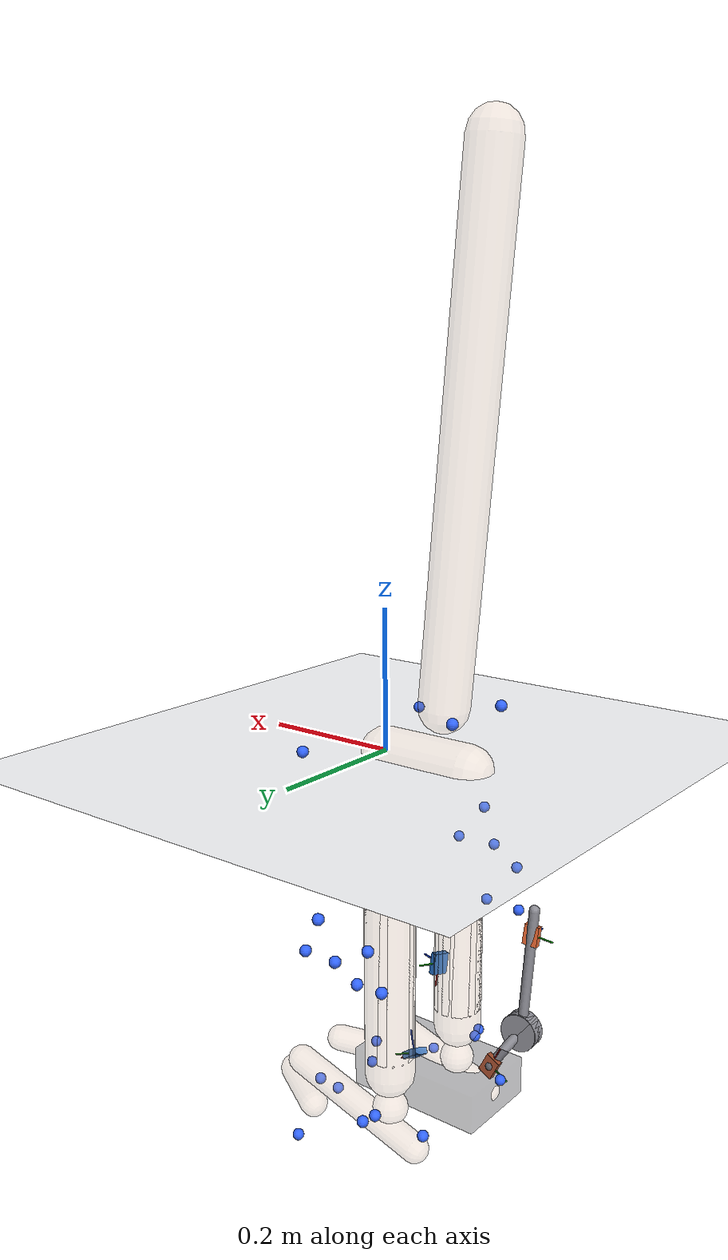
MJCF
<mujoco model="AB10">
  <compiler angle="radian" autolimits="true"/>
  <option timestep="0.005" gravity="0 0 -9.81"><flag contact="disable"/></option>
  <visual><global offwidth="1600" offheight="1200"/>
    <headlight ambient="0.55 0.55 0.55" diffuse="0.6 0.6 0.6"/></visual>
  <default><joint limited="false" damping="0"/><geom contype="0" conaffinity="0"/></default>
  <asset>
    <texture name="grid" type="2d" builtin="checker" rgb1="0.75 0.77 0.8" rgb2="0.85 0.87 0.9" width="512" height="512"/>
    <material name="grid" texture="grid" texrepeat="2 2" texuniform="true"/>
    <material name="skin" rgba="0.85 0.72 0.62 0.28"/>
  </asset>
  <worldbody>
    <light pos="0 0 4" dir="0 0 -1"/>
    <geom name="floor" type="plane" size="0 0 0.05" material="grid"/>
    <body name="pelvis" pos="0 0 0" quat="1 0 0 0">
      <joint name="pelvis_tx" type="slide" axis="1 0 0"/>
      <joint name="pelvis_ty" type="slide" axis="0 0 1"/>
      <joint name="pelvis_tz" type="slide" axis="0 -1 0"/>
      <joint name="pelvis_tilt" type="hinge" axis="0 -1 0"/>
      <joint name="pelvis_list" type="hinge" axis="1 0 0"/>
      <joint name="pelvis_rotation" type="hinge" axis="0 0 1"/>
      <inertial pos="-0.068270285 0 0" mass="13.4215" diaginertia="0.13421502 0.13421502 0.13421502"/>
      <geom type="capsule" fromto="0 0 0 -0.13654057 0 0" size="0.035" material="skin" mass="0"/>
      <site name="m_R_ASIS" pos="0.038416114 -0.12723426 0.026757285" size="0.008" rgba="0.2 0.4 1 1" group="2"/>
      <site name="m_L_ASIS" pos="0.039418578 0.12679107 0.023472" size="0.008" rgba="0.2 0.4 1 1" group="2"/>
      <site name="m_L_PSIS" pos="-0.15084693 0.056858622 0.078959827" size="0.008" rgba="0.2 0.4 1 1" group="2"/>
      <site name="m_R_PSIS" pos="-0.14918613 -0.057842359 0.076927052" size="0.008" rgba="0.2 0.4 1 1" group="2"/>
      <body name="femur_r" pos="-0.068270285 -0.080630393 -0.063828371" quat="1 0 0 0">
        <joint name="hip_flexion_r" type="hinge" axis="0 -1 0"/>
        <joint name="hip_adduction_r" type="hinge" axis="1 0 0"/>
        <joint name="hip_rotation_r" type="hinge" axis="0 0 1"/>
        <inertial pos="0 0 -0.16981628" mass="10.6002" diaginertia="0.10600217 0.10600217 0.10600217"/>
        <geom type="capsule" fromto="0 0 0 0 0 -0.33963257" size="0.035" material="skin" mass="0"/>
        <site name="m_R_Thigh_Upper" pos="0.030077259 -0.10829872 -0.066636975" size="0.008" rgba="0.2 0.4 1 1" group="2"/>
        <site name="m_R_Thigh_Front" pos="0.06919928 -0.099423219 -0.12010598" size="0.008" rgba="0.2 0.4 1 1" group="2"/>
        <site name="m_R_Thigh_Rear" pos="0.012768813 -0.11081967 -0.12308051" size="0.008" rgba="0.2 0.4 1 1" group="2"/>
        <site name="m_R_Knee_Lat" pos="0.00022959524 -0.057643993 -0.40618089" size="0.008" rgba="0.2 0.4 1 1" group="2"/>
        <body name="tibia_r" pos="0 0 0" quat="1 0 0 0">
<geom name="gt_shank_axis_x" type="capsule" size="0.0012" fromto="0.03350 0.00100 -0.28010 0.03473 0.00658 -0.31463" rgba="1 0.1 0.1 1" contype="0" conaffinity="0" mass="0"/>
<geom name="gt_shank_axis_y" type="capsule" size="0.0012" fromto="0.03350 0.00100 -0.28010 0.04381 0.03396 -0.27440" rgba="0.1 0.8 0.1 1" contype="0" conaffinity="0" mass="0"/>
<geom name="gt_shank_axis_z" type="capsule" size="0.0012" fromto="0.03350 0.00100 -0.28010 0.06692 -0.00937 -0.28059" rgba="0.1 0.3 1 1" contype="0" conaffinity="0" mass="0"/>
<geom name="exo_shank_axis_x" type="capsule" size="0.0012" fromto="-0.05448 -0.11616 -0.25495 -0.05679 -0.12057 -0.22030" rgba="1 0.1 0.1 1" contype="0" conaffinity="0" mass="0"/>
<geom name="exo_shank_axis_y" type="capsule" size="0.0012" fromto="-0.05448 -0.11616 -0.25495 -0.08934 -0.11803 -0.25751" rgba="0.1 0.8 0.1 1" contype="0" conaffinity="0" mass="0"/>
<geom name="exo_shank_axis_z" type="capsule" size="0.0012" fromto="-0.05448 -0.11616 -0.25495 -0.05231 -0.15083 -0.25922" rgba="0.1 0.3 1 1" contype="0" conaffinity="0" mass="0"/>
<geom name="encoder_shank" type="cylinder" size="0.03 0.012" fromto="-0.03752 -0.13175 -0.42323 -0.03948 -0.10785 -0.42237" rgba="0.55 0.55 0.58 1" contype="0" conaffinity="0" mass="0"/>
<geom name="strut_shank" type="capsule" size="0.008" fromto="-0.03850 -0.11980 -0.42280 -0.05848 -0.11525 -0.21299" rgba="0.55 0.55 0.58 1" contype="0" conaffinity="0" mass="0"/>
          <joint name="knee_r_translation1" type="slide" axis="1 0 0"/>
          <joint name="knee_r_translation2" type="slide" axis="0 0 1"/>
          <joint name="knee_angle_r" type="hinge" axis="0 -1 0"/>
          <inertial pos="0 0 -0.18359179" mass="4.2252" diaginertia="0.042252032 0.042252032 0.042252032"/>
          <geom type="capsule" fromto="0 0 0 0 0 -0.36718358" size="0.035" material="skin" mass="0"/>
          <site name="m_R_Shank_Upper" pos="-0.041103485 -0.090265539 -0.13977425" size="0.008" rgba="0.2 0.4 1 1" group="2"/>
          <site name="m_R_Shank_Front" pos="-0.00016861335 -0.073296684 -0.19551104" size="0.008" rgba="0.2 0.4 1 1" group="2"/>
          <site name="m_R_Shank_Rear" pos="-0.052502674 -0.079824174 -0.20083706" size="0.008" rgba="0.2 0.4 1 1" group="2"/>
          <site name="m_R_Ankle_Lat" pos="-0.00090786675 -0.046396653 -0.41126888" size="0.008" rgba="0.2 0.4 1 1" group="2"/>
          <site name="gt_shank_imu" type="box" size="0.016 0.012 0.005" pos="0.0335 0.001 -0.2801" quat="0.7005243 0.16388001 0.69288041 -0.048226316" rgba="0.16 0.47 0.84 1" group="1"/>
          <site name="exo_shank_imu" type="box" size="0.016 0.012 0.005" pos="-0.054481 -0.116164 -0.254948" quat="-0.43552432 -0.52665204 0.53257167 -0.49932315" rgba="0.92 0.41 0.20 1" group="1"/>
          <body name="talus_r" pos="0 0 -0.4228413" quat="1 0 0 0">
            <joint name="ankle_angle_r" type="hinge" axis="-0.10501355 -0.97912632 -0.17402245"/>
            <inertial pos="0 0 0" mass="0.113964" diaginertia="0.0011396367 0.0011396367 0.0011396367"/>
            <geom type="sphere" size="0.025" material="skin" mass="0"/>
            <body name="calcn_r" pos="-0.04795807 -0.0077881466 -0.04125161" quat="1 0 0 0">
<geom name="gt_foot_axis_x" type="capsule" size="0.0012" fromto="0.13330 -0.00100 0.00990 0.16122 -0.00464 -0.01090" rgba="1 0.1 0.1 1" contype="0" conaffinity="0" mass="0"/>
<geom name="gt_foot_axis_y" type="capsule" size="0.0012" fromto="0.13330 -0.00100 0.00990 0.14437 0.03088 0.01919" rgba="0.1 0.8 0.1 1" contype="0" conaffinity="0" mass="0"/>
<geom name="gt_foot_axis_z" type="capsule" size="0.0012" fromto="0.13330 -0.00100 0.00990 0.15128 -0.01498 0.03648" rgba="0.1 0.3 1 1" contype="0" conaffinity="0" mass="0"/>
<geom name="exo_foot_axis_x" type="capsule" size="0.0012" fromto="0.03748 -0.06825 -0.00932 0.02250 -0.07217 0.02207" rgba="1 0.1 0.1 1" contype="0" conaffinity="0" mass="0"/>
<geom name="exo_foot_axis_y" type="capsule" size="0.0012" fromto="0.03748 -0.06825 -0.00932 0.00585 -0.06640 -0.02419" rgba="0.1 0.8 0.1 1" contype="0" conaffinity="0" mass="0"/>
<geom name="exo_foot_axis_z" type="capsule" size="0.0012" fromto="0.03748 -0.06825 -0.00932 0.03749 -0.10298 -0.01365" rgba="0.1 0.3 1 1" contype="0" conaffinity="0" mass="0"/>
<geom name="encoder_foot" type="cylinder" size="0.03 0.012" fromto="0.01007 -0.12406 0.04054 0.00893 -0.10014 0.04206" rgba="0.55 0.55 0.58 1" contype="0" conaffinity="0" mass="0"/>
<geom name="strut_foot" type="capsule" size="0.008" fromto="0.00950 -0.11210 0.04130 0.03748 -0.06825 -0.00932" rgba="0.55 0.55 0.58 1" contype="0" conaffinity="0" mass="0"/>
<geom name="shoe" type="box" pos="0.09194 -0.00498 -0.00575" size="0.10837 0.06626 0.03000" rgba="0.15 0.15 0.18 0.35" contype="0" conaffinity="0" mass="0"/>
              <joint name="subtalar_angle_r" type="hinge" axis="0.78717961 0.12094949 0.60474746"/>
              <inertial pos="0.10238969 0 0.030716907" mass="1.42455" diaginertia="0.014245459 0.014245459 0.014245459"/>
              <geom type="capsule" fromto="0 0 0 0.20477938 0 0.061433813" size="0.02" material="skin" mass="0"/>
              <site name="m_R_Heel" pos="-0.023432593 -0.0017730639 0.023436829" size="0.008" rgba="0.2 0.4 1 1" group="2"/>
              <site name="m_R_Toe_Lat" pos="0.14294387 -0.064441714 -0.015746494" size="0.008" rgba="0.2 0.4 1 1" group="2"/>
              <site name="m_R_Toe_Med" pos="0.17841899 0.048083967 0.0022326382" size="0.008" rgba="0.2 0.4 1 1" group="2"/>
              <site name="m_R_Toe_Tip" pos="0.19031655 0.02241146 0.020702757" size="0.008" rgba="0.2 0.4 1 1" group="2"/>
              <site name="gt_foot_imu" type="box" size="0.016 0.012 0.005" pos="0.1333 -0.001 0.0099" quat="0.93108691 0.17850461 0.29744546 -0.11286927" rgba="0.16 0.47 0.84 1" group="1"/>
              <site name="exo_foot_imu" type="box" size="0.016 0.012 0.005" pos="0.03748 -0.068246 -0.009319" quat="-0.35384627 -0.40095888 0.63337531 -0.55933935" rgba="0.92 0.41 0.20 1" group="1"/>
              <body name="toes_r" pos="0.18307276 -0.0011058086 -0.0020477938" quat="1 0 0 0">
                <joint name="mtp_angle_r" type="hinge" axis="-0.5809544 -0.81393611 0"/>
                <inertial pos="0.035426832 0.017918196 0.0061433813" mass="0.246845" diaginertia="0.0024684532 0.0024684532 0.0024684532"/>
                <geom type="capsule" fromto="0 0 0 0.070853665 0.035836391 0.012286763" size="0.02" material="skin" mass="0"/>
              </body>
            </body>
          </body>
        </body>
      </body>
      <body name="femur_l" pos="-0.068270285 0.080630393 -0.063828371" quat="1 0 0 0">
        <joint name="hip_flexion_l" type="hinge" axis="0 -1 0"/>
        <joint name="hip_adduction_l" type="hinge" axis="-1 0 0"/>
        <joint name="hip_rotation_l" type="hinge" axis="0 0 -1"/>
        <inertial pos="0 0 -0.16981628" mass="10.6002" diaginertia="0.10600217 0.10600217 0.10600217"/>
        <geom type="capsule" fromto="0 0 0 0 0 -0.33963257" size="0.035" material="skin" mass="0"/>
        <site name="m_L_Thigh_Upper" pos="0.022008964 0.11806588 -0.099705511" size="0.008" rgba="0.2 0.4 1 1" group="2"/>
        <site name="m_L_Thigh_Front" pos="0.055716605 0.10609323 -0.15823041" size="0.008" rgba="0.2 0.4 1 1" group="2"/>
        <site name="m_L_Thigh_Rear" pos="0.00048962531 0.11183266 -0.15459779" size="0.008" rgba="0.2 0.4 1 1" group="2"/>
        <site name="m_L_Knee_Lat" pos="0.00052535452 0.059957796 -0.41390898" size="0.008" rgba="0.2 0.4 1 1" group="2"/>
        <body name="tibia_l" pos="0 0 0" quat="1 0 0 0">
          <joint name="knee_l_translation1" type="slide" axis="1 0 0"/>
          <joint name="knee_l_translation2" type="slide" axis="0 0 1"/>
          <joint name="knee_angle_l" type="hinge" axis="0 -1 0"/>
          <inertial pos="0 0 -0.18359179" mass="4.2252" diaginertia="0.042252032 0.042252032 0.042252032"/>
          <geom type="capsule" fromto="0 0 0 0 0 -0.36718358" size="0.035" material="skin" mass="0"/>
          <site name="m_L_Shank_Upper" pos="-0.03047514 0.08385632 -0.14196566" size="0.008" rgba="0.2 0.4 1 1" group="2"/>
          <site name="m_L_Shank_Front" pos="-0.0026613492 0.072459571 -0.20230264" size="0.008" rgba="0.2 0.4 1 1" group="2"/>
          <site name="m_L_Shank_Rear" pos="-0.048404466 0.078589748 -0.19654234" size="0.008" rgba="0.2 0.4 1 1" group="2"/>
          <site name="m_L_Ankle_Lat" pos="-0.01099252 0.04766677 -0.40660312" size="0.008" rgba="0.2 0.4 1 1" group="2"/>
          <body name="talus_l" pos="0 0 -0.4228413" quat="1 0 0 0">
            <joint name="ankle_angle_l" type="hinge" axis="0.10501355 -0.97912632 0.17402245"/>
            <inertial pos="0 0 0" mass="0.113964" diaginertia="0.0011396367 0.0011396367 0.0011396367"/>
            <geom type="sphere" size="0.025" material="skin" mass="0"/>
            <body name="calcn_l" pos="-0.04795807 0.0077881466 -0.04125161" quat="1 0 0 0">
              <joint name="subtalar_angle_l" type="hinge" axis="-0.78717961 0.12094949 -0.60474746"/>
              <inertial pos="0.10238969 0 0.030716907" mass="1.42455" diaginertia="0.014245459 0.014245459 0.014245459"/>
              <geom type="capsule" fromto="0 0 0 0.20477938 0 0.061433813" size="0.02" material="skin" mass="0"/>
              <site name="m_L_Heel" pos="-0.015500553 0.0015369118 0.026750198" size="0.008" rgba="0.2 0.4 1 1" group="2"/>
              <site name="m_L_Toe_Lat" pos="0.1584223 0.062225623 -0.010668709" size="0.008" rgba="0.2 0.4 1 1" group="2"/>
              <site name="m_L_Toe_Med" pos="0.17921606 -0.049064481 -0.0021747638" size="0.008" rgba="0.2 0.4 1 1" group="2"/>
              <site name="m_L_Toe_Tip" pos="0.1919689 -0.024528944 0.021219989" size="0.008" rgba="0.2 0.4 1 1" group="2"/>
              <body name="toes_l" pos="0.18307276 0.0011058086 -0.0020477938" quat="1 0 0 0">
                <joint name="mtp_angle_l" type="hinge" axis="0.5809544 -0.81393611 0"/>
                <inertial pos="0.035426832 -0.017918196 0.0061433813" mass="0.246845" diaginertia="0.0024684532 0.0024684532 0.0024684532"/>
                <geom type="capsule" fromto="0 0 0 0.070853665 -0.035836391 0.012286763" size="0.02" material="skin" mass="0"/>
              </body>
            </body>
          </body>
        </body>
      </body>
      <body name="torso" pos="-0.097239289 0 0.078699126" quat="1 0 0 0">
        <joint name="lumbar_extension" type="hinge" axis="0 -1 0"/>
        <joint name="lumbar_bending" type="hinge" axis="1 0 0"/>
        <joint name="lumbar_rotation" type="hinge" axis="0 0 1"/>
        <inertial pos="-0.032415606 0 0.34576646" mass="39.0173" diaginertia="0.39017287 0.39017287 0.39017287"/>
        <geom type="capsule" fromto="0 0 0 -0.064831212 0 0.69153293" size="0.035" material="skin" mass="0"/>
      </body>
    </body>
  </worldbody>
  <sensor>
<accelerometer name="gt_foot_imu_acc" site="gt_foot_imu"/>
<gyro name="gt_foot_imu_gyr" site="gt_foot_imu"/>
<accelerometer name="exo_foot_imu_acc" site="exo_foot_imu"/>
<gyro name="exo_foot_imu_gyr" site="exo_foot_imu"/>
<accelerometer name="gt_shank_imu_acc" site="gt_shank_imu"/>
<gyro name="gt_shank_imu_gyr" site="gt_shank_imu"/>
<accelerometer name="exo_shank_imu_acc" site="exo_shank_imu"/>
<gyro name="exo_shank_imu_gyr" site="exo_shank_imu"/>
</sensor>
</mujoco>
